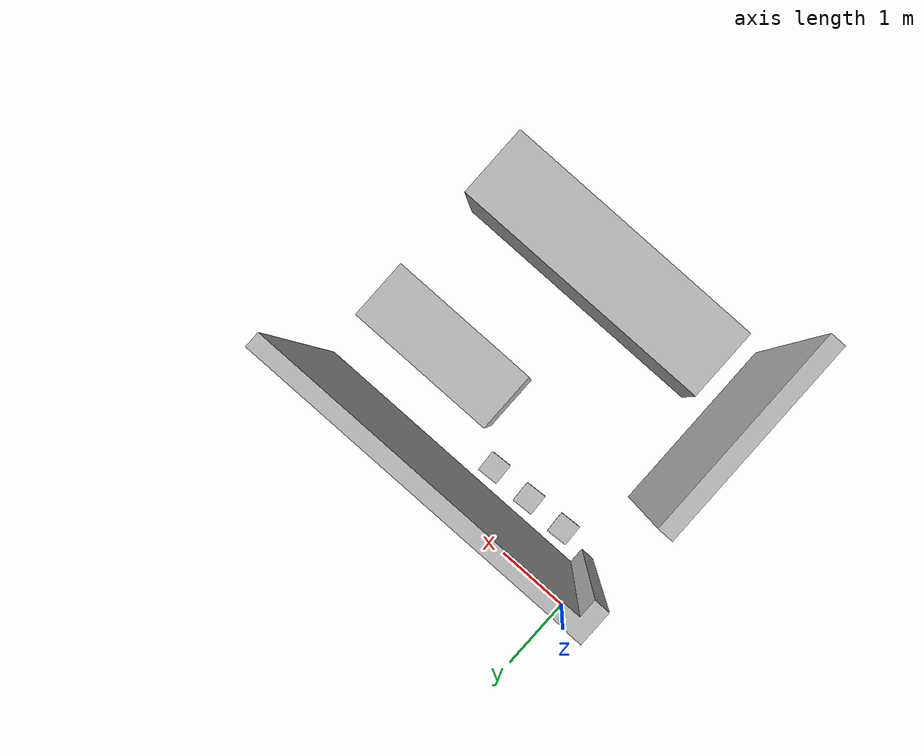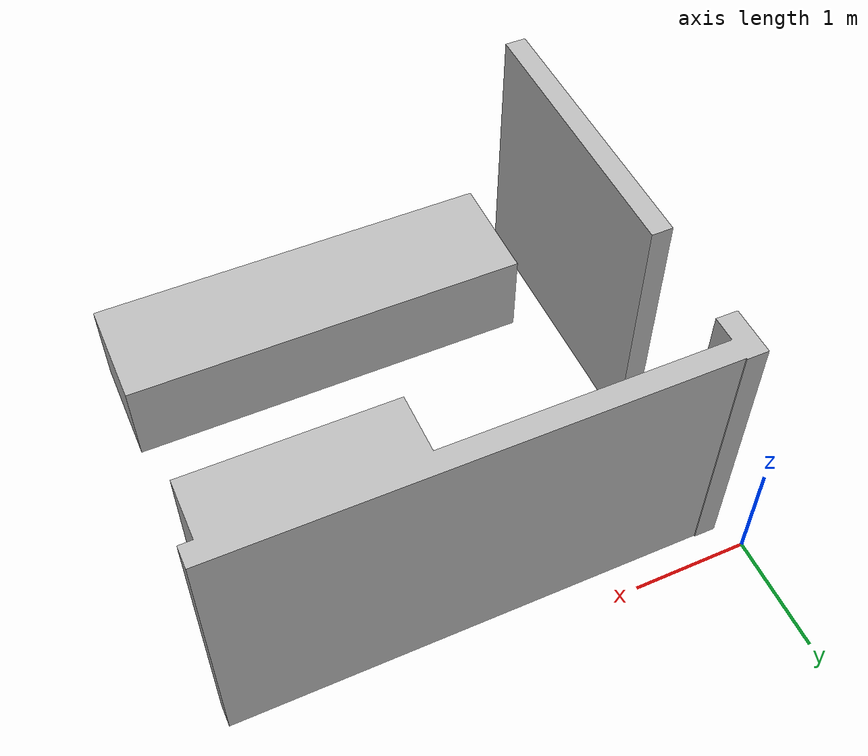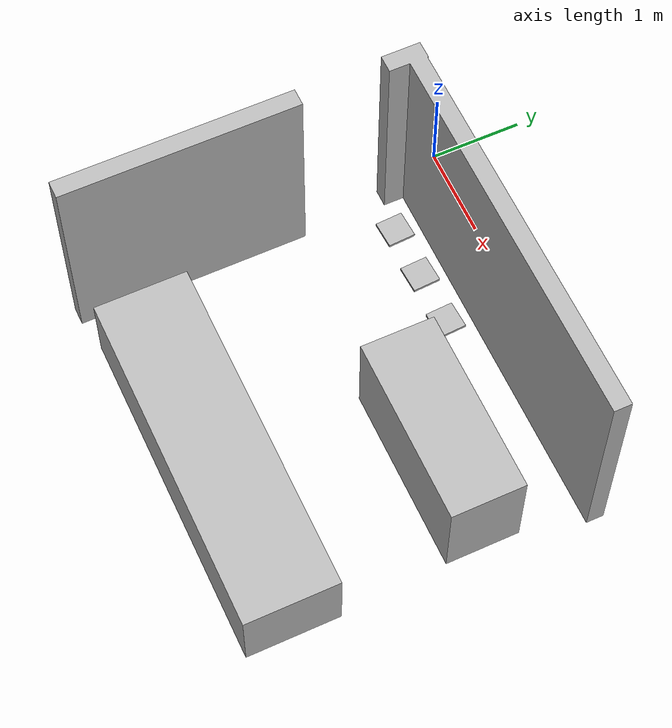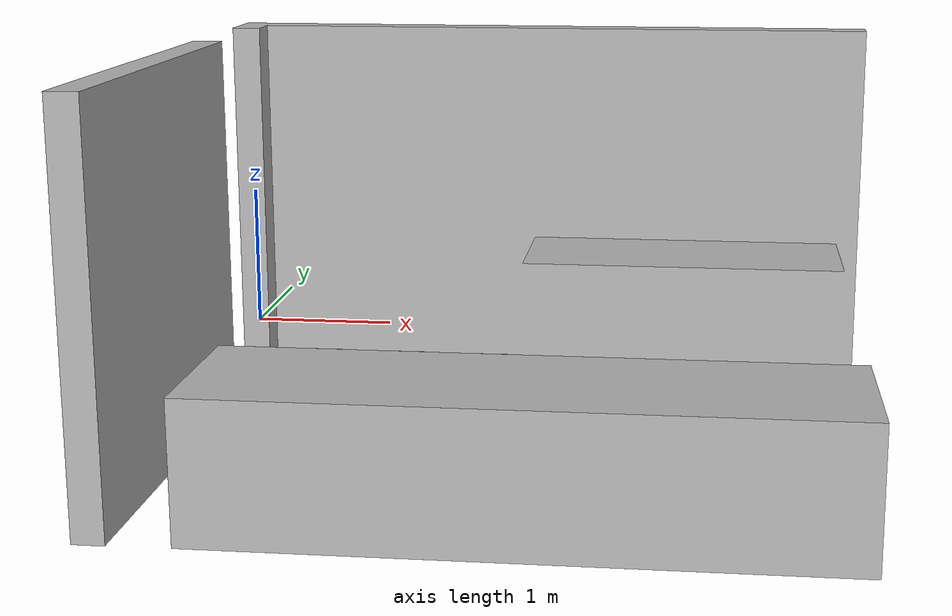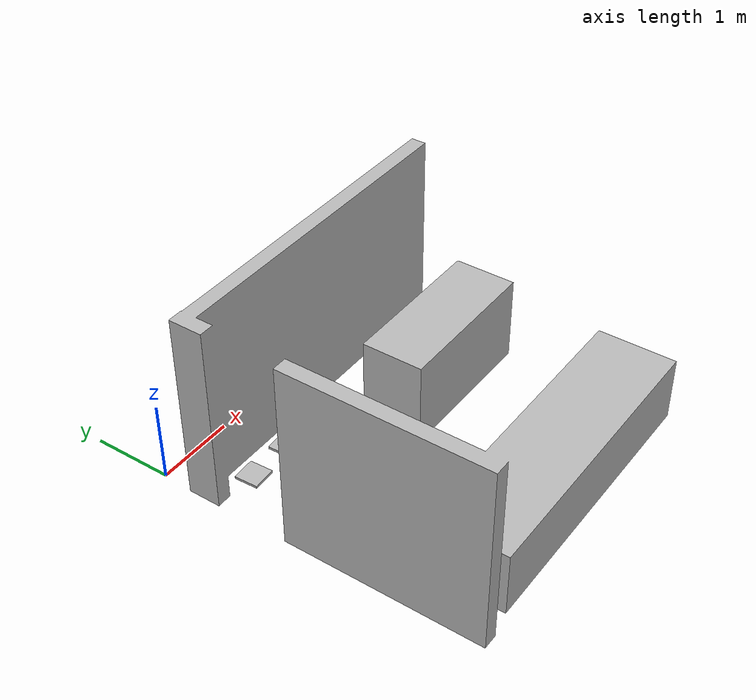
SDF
<sdf version="1.6">
 <world name="default">
  <scene><ambient>0.8 0.8 0.8 1.0</ambient><background>0 0 0</background><grid>false</grid></scene>
  <include><uri>model://sun</uri></include>
  <include><uri>model://box_restaurant</uri><pose>1.44 -1.65 -0.1 0 0 0</pose></include>
  <include><uri>model://charging_station_1</uri><pose>0.62173 -0.75 -0.06 0 0 -1.52</pose></include>
  <include><uri>model://charging_station_2</uri><pose>1.2191 -0.75 -0.06 0 0 -1.52</pose></include>
  <include><uri>model://charging_station_3</uri><pose>1.824 -0.75 -0.06 0 0 -1.52</pose></include>
  <plugin name="gazebo_ros_state" filename="libgazebo_ros_state.so">
   <ros><namespace>/gazebo</namespace></ros>
   <update_rate>5.0</update_rate>
  </plugin>
 </world>
</sdf>

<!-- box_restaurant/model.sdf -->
<sdf version='1.6'>
  <model name='box_restaurant'>
    <link name='link_1'>
         <visual name='visual'>
        <pose frame=''>0 0 0 0 -0 0</pose>
        <geometry>
          <mesh>
            <uri>model://box_restaurant/meshes/box_restaurant.dae</uri>
            <scale>0.1 0.1 0.1</scale>
          </mesh>
        </geometry>
        <cast_shadows>0</cast_shadows>
        <transparency>0</transparency>
      </visual>
      <collision name='collision'>
        <laser_retro>0</laser_retro>
        <max_contacts>10</max_contacts>
        <pose frame=''>0 0 0 0 -0 0</pose>
        <geometry>
          <mesh>
            <uri>model://box_restaurant/meshes/box_restaurant.dae</uri>
            <scale>0.1 0.1 0.1</scale>
          </mesh>
        </geometry>
     </collision>
    </link>

    <static>1</static>
    <allow_auto_disable>1</allow_auto_disable>
  </model>
</sdf>

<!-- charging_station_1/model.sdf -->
<sdf version='1.6'>
  <model name='charging_station_1'>
    <link name='link_1'>
         <visual name='visual'>
        <pose frame=''>0 0 0 0 -0 0</pose>
        <geometry>
          <mesh>
            <uri>model://charging_station_1/meshes/charging_station_1.dae</uri>
            <scale>1.0 1.0 1.0</scale>
          </mesh>
        </geometry>
        <cast_shadows>0</cast_shadows>
        <transparency>0</transparency>
      </visual>

    </link>

    <static>1</static>
    <allow_auto_disable>1</allow_auto_disable>
  </model>
</sdf>

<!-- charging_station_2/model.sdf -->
<sdf version='1.6'>
  <model name='charging_station_2'>
    <link name='link_1'>
         <visual name='visual'>
        <pose frame=''>0 0 0 0 -0 0</pose>
        <geometry>
          <mesh>
            <uri>model://charging_station_2/meshes/charging_station_2.dae</uri>
            <scale>1.0 1.0 1.0</scale>
          </mesh>
        </geometry>
        <cast_shadows>0</cast_shadows>
        <transparency>0</transparency>
      </visual>

    </link>

    <static>1</static>
    <allow_auto_disable>1</allow_auto_disable>
  </model>
</sdf>

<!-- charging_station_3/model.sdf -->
<sdf version='1.6'>
  <model name='charging_station_3'>
    <link name='link_1'>
         <visual name='visual'>
        <pose frame=''>0 0 0 0 -0 0</pose>
        <geometry>
          <mesh>
            <uri>model://charging_station_3/meshes/charging_station_3.dae</uri>
            <scale>1.0 1.0 1.0</scale>
          </mesh>
        </geometry>
        <cast_shadows>0</cast_shadows>
        <transparency>0</transparency>
      </visual>

    </link>

    <static>1</static>
    <allow_auto_disable>1</allow_auto_disable>
  </model>
</sdf>
